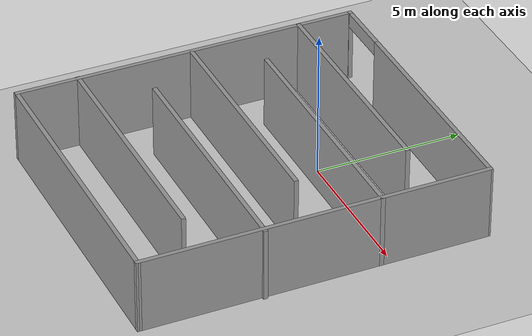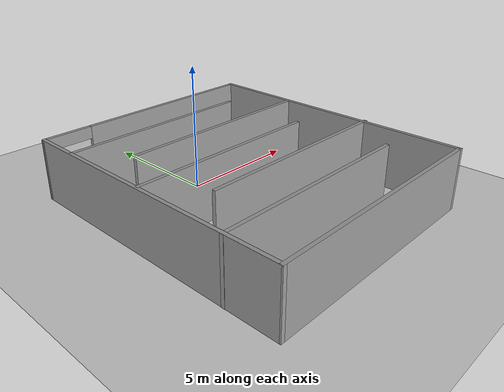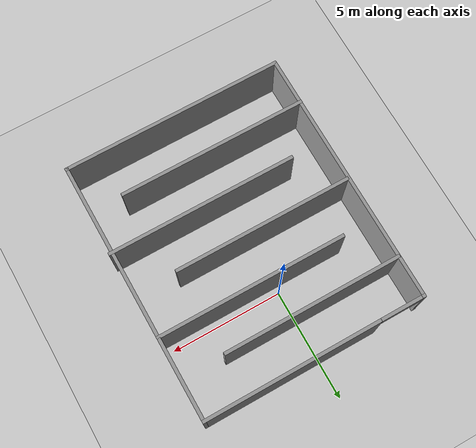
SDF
<sdf version="1.6">
 <world name="default">
  <light name="sun" type="directional">
   <pose>0 0 10 0 -0 0</pose>
   <diffuse>0.8 0.8 0.8 1</diffuse>
   <specular>0.2 0.2 0.2 1</specular>
   <attenuation>
    <range>1000</range>
    <constant>0.9</constant>
    <linear>0.01</linear>
    <quadratic>0.001</quadratic>
   </attenuation>
   <direction>-0.5 0.1 -0.9</direction>
  </light>
  <model name="ground_plane">
   <static>1</static>
   <link name="link">
    <collision name="collision">
     <geometry><plane><normal>0 0 1</normal><size>100 100</size></plane></geometry>
     <surface><friction><ode><mu>100</mu><mu2>50</mu2></ode></friction></surface>
    </collision>
    <visual name="visual">
     <cast_shadows>0</cast_shadows>
     <geometry><plane><normal>0 0 1</normal><size>100 100</size></plane></geometry>
     <material>
      <script><uri>file://media/materials/scripts/gazebo.material</uri><name>Gazebo/Grey</name></script>
     </material>
    </visual>
   </link>
  </model>
  <gravity>0 0 -9.8</gravity>
  <magnetic_field>6e-06 2.3e-05 -4.2e-05</magnetic_field>
  <atmosphere type="adiabatic"/>
  <physics name="default_physics" default="0" type="ode">
   <max_step_size>0.001</max_step_size>
   <real_time_factor>1</real_time_factor>
   <real_time_update_rate>1000</real_time_update_rate>
  </physics>
  <scene><ambient>0.4 0.4 0.4 1</ambient><background>0.7 0.7 0.7 1</background><shadows>1</shadows></scene>
  <spherical_coordinates>
   <surface_model>EARTH_WGS84</surface_model>
   <latitude_deg>0</latitude_deg>
   <longitude_deg>0</longitude_deg>
   <elevation>0</elevation>
   <heading_deg>0</heading_deg>
  </spherical_coordinates>
  <model name="labyrinth">
   <pose>0.404155 -2.52327 0 0 -0 0</pose>
   <link name="Wall_19">
    <pose>-0.050492 5.82026 0 0 -0 0</pose>
    <visual name="Wall_19_Visual_0">
     <pose>-4.91752 0 1.25 0 -0 0</pose>
     <geometry><box><size>0.16496 0.15 2.5</size></box></geometry>
     <material>
      <script><uri>file://media/materials/scripts/gazebo.material</uri><name>Gazebo/Grey</name></script>
      <ambient>1 1 1 1</ambient>
     </material>
     <meta><layer>0</layer></meta>
    </visual>
    <collision name="Wall_19_Collision_0">
     <geometry><box><size>0.16496 0.15 2.5</size></box></geometry>
     <pose>-4.91752 0 1.25 0 -0 0</pose>
    </collision>
    <visual name="Wall_19_Visual_1">
     <pose>1.02098 0 1.25 0 -0 0</pose>
     <geometry><box><size>7.95804 0.15 2.5</size></box></geometry>
     <material>
      <script><uri>file://media/materials/scripts/gazebo.material</uri><name>Gazebo/Grey</name></script>
      <ambient>1 1 1 1</ambient>
     </material>
     <meta><layer>0</layer></meta>
    </visual>
    <collision name="Wall_19_Collision_1">
     <geometry><box><size>7.95804 0.15 2.5</size></box></geometry>
     <pose>1.02098 0 1.25 0 -0 0</pose>
    </collision>
    <visual name="Wall_19_Visual_2">
     <pose>-3.89654 0 2.25 0 -0 0</pose>
     <geometry><box><size>1.877 0.15 0.5</size></box></geometry>
     <material>
      <script><uri>file://media/materials/scripts/gazebo.material</uri><name>Gazebo/Grey</name></script>
      <ambient>1 1 1 1</ambient>
     </material>
     <meta><layer>0</layer></meta>
    </visual>
    <collision name="Wall_19_Collision_2">
     <geometry><box><size>1.877 0.15 0.5</size></box></geometry>
     <pose>-3.89654 0 2.25 0 -0 0</pose>
    </collision>
   </link>
   <link name="Wall_21">
    <collision name="Wall_21_Collision">
     <geometry><box><size>11.7909 0.15 2.5</size></box></geometry>
     <pose>0 0 1.25 0 -0 0</pose>
    </collision>
    <visual name="Wall_21_Visual">
     <pose>0 0 1.25 0 -0 0</pose>
     <geometry><box><size>11.7909 0.15 2.5</size></box></geometry>
     <material>
      <script><uri>file://media/materials/scripts/gazebo.material</uri><name>Gazebo/Grey</name></script>
      <ambient>1 1 1 1</ambient>
     </material>
     <meta><layer>0</layer></meta>
    </visual>
    <pose>4.88614 0 0 0 0 -1.5688</pose>
   </link>
   <link name="Wall_24">
    <collision name="Wall_24_Collision">
     <geometry><box><size>10 0.15 2.5</size></box></geometry>
     <pose>0 0 1.25 0 -0 0</pose>
    </collision>
    <visual name="Wall_24_Visual">
     <pose>0 0 1.25 0 -0 0</pose>
     <geometry><box><size>10 0.15 2.5</size></box></geometry>
     <material>
      <script><uri>file://media/materials/scripts/gazebo.material</uri><name>Gazebo/Grey</name></script>
      <ambient>1 1 1 1</ambient>
     </material>
     <meta><layer>0</layer></meta>
    </visual>
    <pose>-0.02723 -5.82026 0 0 -0 3.14159</pose>
   </link>
   <link name="Wall_25">
    <collision name="Wall_25_Collision">
     <geometry><box><size>11.7909 0.15 2.5</size></box></geometry>
     <pose>0 0 1.25 0 -0 0</pose>
    </collision>
    <visual name="Wall_25_Visual">
     <pose>0 0 1.25 0 -0 0</pose>
     <geometry><box><size>11.7909 0.15 2.5</size></box></geometry>
     <material>
      <script><uri>file://media/materials/scripts/gazebo.material</uri><name>Gazebo/Grey</name></script>
      <ambient>1 1 1 1</ambient>
     </material>
     <meta><layer>0</layer></meta>
    </visual>
    <pose>-4.96386 0 0 0 -0 1.57279</pose>
   </link>
   <link name="Wall_33">
    <collision name="Wall_33_Collision">
     <geometry><box><size>8 0.15 2.5</size></box></geometry>
     <pose>0 0 1.25 0 -0 0</pose>
    </collision>
    <visual name="Wall_33_Visual">
     <pose>0 0 1.25 0 -0 0</pose>
     <geometry><box><size>8 0.15 2.5</size></box></geometry>
     <material>
      <script><uri>file://media/materials/scripts/gazebo.material</uri><name>Gazebo/Grey</name></script>
      <ambient>1 1 1 1</ambient>
     </material>
     <meta><layer>0</layer></meta>
    </visual>
    <pose>-0.949489 0.165707 0 0 -0 0</pose>
   </link>
   <link name="Wall_37">
    <collision name="Wall_37_Collision">
     <geometry><box><size>8.5 0.15 2.5</size></box></geometry>
     <pose>0 0 1.25 0 -0 0</pose>
    </collision>
    <visual name="Wall_37_Visual">
     <pose>0 0 1.25 0 -0 0</pose>
     <geometry><box><size>8.5 0.15 2.5</size></box></geometry>
     <material>
      <script><uri>file://media/materials/scripts/gazebo.material</uri><name>Gazebo/Grey</name></script>
      <ambient>1 1 1 1</ambient>
     </material>
     <meta><layer>0</layer></meta>
    </visual>
    <pose>0.707464 2.16009 0 0 -0 0</pose>
   </link>
   <link name="Wall_51">
    <collision name="Wall_51_Collision">
     <geometry><box><size>8.5 0.15 2.5</size></box></geometry>
     <pose>0 0 1.25 0 -0 0</pose>
    </collision>
    <visual name="Wall_51_Visual">
     <pose>0 0 1.25 0 -0 0</pose>
     <geometry><box><size>8.5 0.15 2.5</size></box></geometry>
     <material>
      <script><uri>file://media/materials/scripts/gazebo.material</uri><name>Gazebo/Grey</name></script>
      <ambient>1 1 1 1</ambient>
     </material>
     <meta><layer>0</layer></meta>
    </visual>
    <pose>0.800643 -1.7547 0 0 -0 3.14159</pose>
   </link>
   <link name="Wall_53">
    <collision name="Wall_53_Collision">
     <geometry><box><size>8.5 0.15 2.5</size></box></geometry>
     <pose>0 0 1.25 0 -0 0</pose>
    </collision>
    <visual name="Wall_53_Visual">
     <pose>0 0 1.25 0 -0 0</pose>
     <geometry><box><size>8.5 0.15 2.5</size></box></geometry>
     <material>
      <script><uri>file://media/materials/scripts/gazebo.material</uri><name>Gazebo/Grey</name></script>
      <ambient>1 1 1 1</ambient>
     </material>
     <meta><layer>0</layer></meta>
    </visual>
    <pose>-0.79188 -3.72575 0 0 -0 0</pose>
   </link>
   <link name="Wall_61">
    <collision name="Wall_61_Collision">
     <geometry><box><size>8 0.15 2.5</size></box></geometry>
     <pose>0 0 1.25 0 -0 0</pose>
    </collision>
    <visual name="Wall_61_Visual">
     <pose>0 0 1.25 0 -0 0</pose>
     <geometry><box><size>8 0.15 2.5</size></box></geometry>
     <material>
      <script><uri>file://media/materials/scripts/gazebo.material</uri><name>Gazebo/Grey</name></script>
      <ambient>1 1 1 1</ambient>
     </material>
     <meta><layer>0</layer></meta>
    </visual>
    <pose>-1.02423 3.97457 0 0 -0 0</pose>
   </link>
   <static>1</static>
  </model>
 </world>
</sdf>
